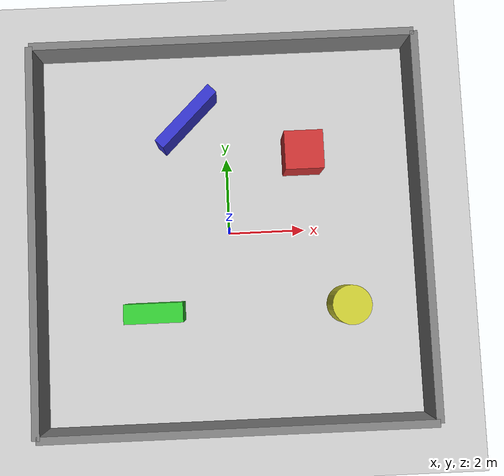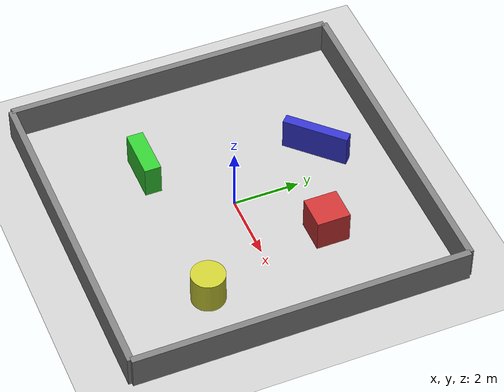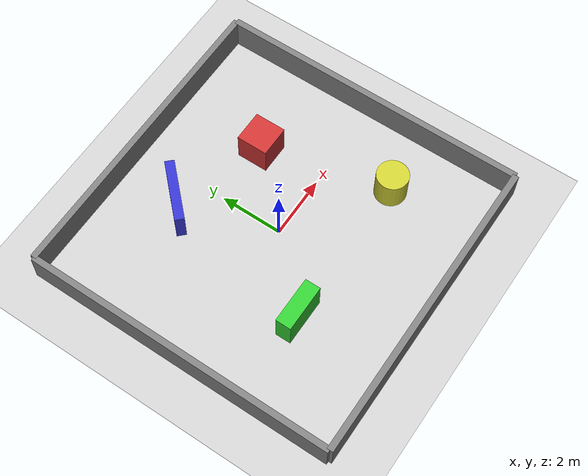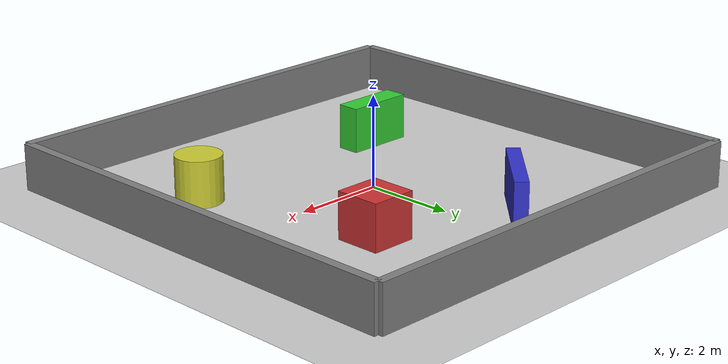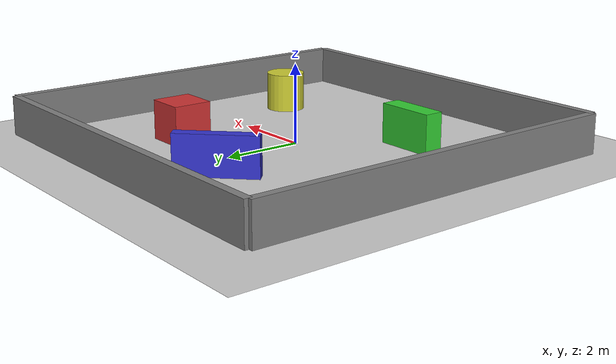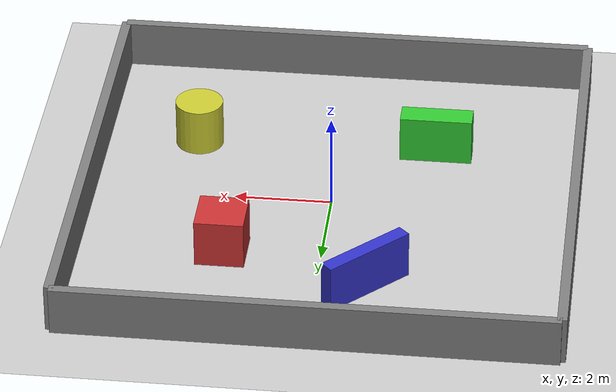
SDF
<?xml version="1.0"?>
<sdf version="1.6">
  <world name="exploration_world">
    <!-- Ground Plane -->
    <include>
      <uri>model://ground_plane</uri>
    </include>

    <!-- Sun -->
    <include>
      <uri>model://sun</uri>
    </include>

    <!-- Physics -->
    <physics type="ode">
      <real_time_update_rate>1000.0</real_time_update_rate>
      <max_step_size>0.001</max_step_size>
      <real_time_factor>1</real_time_factor>
      <ode>
        <solver>
          <type>quick</type>
          <iters>150</iters>
          <precon_iters>0</precon_iters>
          <sor>1.400000</sor>
          <use_dynamic_moi_rescaling>1</use_dynamic_moi_rescaling>
        </solver>
        <constraints>
          <cfm>0.00001</cfm>
          <erp>0.2</erp>
          <contact_max_correcting_vel>2000.000000</contact_max_correcting_vel>
          <contact_surface_layer>0.01000</contact_surface_layer>
        </constraints>
      </ode>
    </physics>

    <!-- Scene -->
    <scene>
      <ambient>0.4 0.4 0.4 1</ambient>
      <background>0.7 0.7 0.7 1</background>
      <shadows>true</shadows>
    </scene>

    <!-- Walls for exploration environment -->
    <!-- Outer boundary walls -->
    <model name="wall_north">
      <static>true</static>
      <pose>0 5 0.5 0 0 0</pose>
      <link name="link">
        <collision name="collision">
          <geometry>
            <box>
              <size>10 0.2 1</size>
            </box>
          </geometry>
        </collision>
        <visual name="visual">
          <geometry>
            <box>
              <size>10 0.2 1</size>
            </box>
          </geometry>
          <material>
            <ambient>0.5 0.5 0.5 1</ambient>
            <diffuse>0.5 0.5 0.5 1</diffuse>
          </material>
        </visual>
      </link>
    </model>

    <model name="wall_south">
      <static>true</static>
      <pose>0 -5 0.5 0 0 0</pose>
      <link name="link">
        <collision name="collision">
          <geometry>
            <box>
              <size>10 0.2 1</size>
            </box>
          </geometry>
        </collision>
        <visual name="visual">
          <geometry>
            <box>
              <size>10 0.2 1</size>
            </box>
          </geometry>
          <material>
            <ambient>0.5 0.5 0.5 1</ambient>
            <diffuse>0.5 0.5 0.5 1</diffuse>
          </material>
        </visual>
      </link>
    </model>

    <model name="wall_east">
      <static>true</static>
      <pose>5 0 0.5 0 0 0</pose>
      <link name="link">
        <collision name="collision">
          <geometry>
            <box>
              <size>0.2 10 1</size>
            </box>
          </geometry>
        </collision>
        <visual name="visual">
          <geometry>
            <box>
              <size>0.2 10 1</size>
            </box>
          </geometry>
          <material>
            <ambient>0.5 0.5 0.5 1</ambient>
            <diffuse>0.5 0.5 0.5 1</diffuse>
          </material>
        </visual>
      </link>
    </model>

    <model name="wall_west">
      <static>true</static>
      <pose>-5 0 0.5 0 0 0</pose>
      <link name="link">
        <collision name="collision">
          <geometry>
            <box>
              <size>0.2 10 1</size>
            </box>
          </geometry>
        </collision>
        <visual name="visual">
          <geometry>
            <box>
              <size>0.2 10 1</size>
            </box>
          </geometry>
          <material>
            <ambient>0.5 0.5 0.5 1</ambient>
            <diffuse>0.5 0.5 0.5 1</diffuse>
          </material>
        </visual>
      </link>
    </model>

    <!-- Interior obstacles for SLAM mapping -->
    <model name="obstacle_1">
      <static>true</static>
      <pose>2 2 0.5 0 0 0</pose>
      <link name="link">
        <collision name="collision">
          <geometry>
            <box>
              <size>1 1 1</size>
            </box>
          </geometry>
        </collision>
        <visual name="visual">
          <geometry>
            <box>
              <size>1 1 1</size>
            </box>
          </geometry>
          <material>
            <ambient>0.8 0.2 0.2 1</ambient>
            <diffuse>0.8 0.2 0.2 1</diffuse>
          </material>
        </visual>
      </link>
    </model>

    <model name="obstacle_2">
      <static>true</static>
      <pose>-2 -2 0.5 0 0 0</pose>
      <link name="link">
        <collision name="collision">
          <geometry>
            <box>
              <size>1.5 0.5 1</size>
            </box>
          </geometry>
        </collision>
        <visual name="visual">
          <geometry>
            <box>
              <size>1.5 0.5 1</size>
            </box>
          </geometry>
          <material>
            <ambient>0.2 0.8 0.2 1</ambient>
            <diffuse>0.2 0.8 0.2 1</diffuse>
          </material>
        </visual>
      </link>
    </model>

    <model name="obstacle_3">
      <static>true</static>
      <pose>-1 3 0.5 0 0 0.785</pose>
      <link name="link">
        <collision name="collision">
          <geometry>
            <box>
              <size>2 0.3 1</size>
            </box>
          </geometry>
        </collision>
        <visual name="visual">
          <geometry>
            <box>
              <size>2 0.3 1</size>
            </box>
          </geometry>
          <material>
            <ambient>0.2 0.2 0.8 1</ambient>
            <diffuse>0.2 0.2 0.8 1</diffuse>
          </material>
        </visual>
      </link>
    </model>

    <model name="cylinder_obstacle">
      <static>true</static>
      <pose>3 -2 0.5 0 0 0</pose>
      <link name="link">
        <collision name="collision">
          <geometry>
            <cylinder>
              <radius>0.5</radius>
              <length>1</length>
            </cylinder>
          </geometry>
        </collision>
        <visual name="visual">
          <geometry>
            <cylinder>
              <radius>0.5</radius>
              <length>1</length>
            </cylinder>
          </geometry>
          <material>
            <ambient>0.8 0.8 0.2 1</ambient>
            <diffuse>0.8 0.8 0.2 1</diffuse>
          </material>
        </visual>
      </link>
    </model>

  </world>
</sdf>
